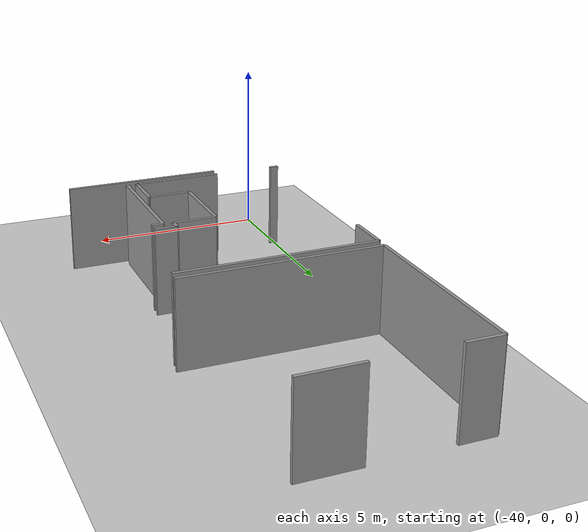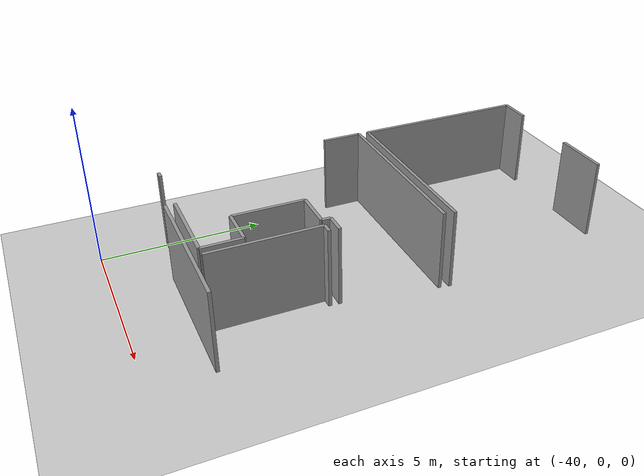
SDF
<sdf version="1.6">
 <world name="default">
  <model name="ground_plane">
   <static>1</static>
   <link name="link">
    <collision name="collision">
     <geometry><plane><normal>0 0 1</normal><size>100 100</size></plane></geometry>
     <surface><friction><ode><mu>100</mu><mu2>50</mu2></ode></friction></surface>
    </collision>
    <visual name="visual">
     <cast_shadows>0</cast_shadows>
     <geometry><plane><normal>0 0 1</normal><size>100 100</size></plane></geometry>
     <material>
      <script><uri>file://media/materials/scripts/gazebo.material</uri><name>Gazebo/Grey</name></script>
     </material>
    </visual>
   </link>
  </model>
  <model name="0510032268_A_40_1_102">
   <static>1</static>
   <link name="Wall_13">
    <collision name="Wall_13_Collision">
     <geometry><box><size>5.64752334461 0.1 2.5</size></box></geometry>
     <pose>2.82376167231 0 1.25 0 0 0</pose>
    </collision>
    <visual name="Wall_13_Visual">
     <pose>2.82376167231 0 1.25 0 0 0</pose>
     <geometry><box><size>5.64752334461 0.1 2.5</size></box></geometry>
     <material>
      <script><uri>file://media/materials/scripts/gazebo.material</uri><name>Gazebo/Grey</name></script>
      <ambient>1 1 1 1</ambient>
     </material>
    </visual>
    <pose>13.4452266538 -5.71620823838 0 0 0 3.14159265359</pose>
   </link>
   <link name="Wall_14">
    <collision name="Wall_14_Collision">
     <geometry><box><size>5.42445613879 0.1 2.5</size></box></geometry>
     <pose>2.7122280694 0 1.25 0 0 0</pose>
    </collision>
    <visual name="Wall_14_Visual">
     <pose>2.7122280694 0 1.25 0 0 0</pose>
     <geometry><box><size>5.42445613879 0.1 2.5</size></box></geometry>
     <material>
      <script><uri>file://media/materials/scripts/gazebo.material</uri><name>Gazebo/Grey</name></script>
      <ambient>1 1 1 1</ambient>
     </material>
    </visual>
    <pose>7.79770330919 -5.71620823838 0 0 0 1.57079632679</pose>
   </link>
   <link name="Wall_15">
    <collision name="Wall_15_Collision">
     <geometry><box><size>1.01592702389 0.1 2.5</size></box></geometry>
     <pose>0.507963511944 0 1.25 0 0 0</pose>
    </collision>
    <visual name="Wall_15_Visual">
     <pose>0.507963511944 0 1.25 0 0 0</pose>
     <geometry><box><size>1.01592702389 0.1 2.5</size></box></geometry>
     <material>
      <script><uri>file://media/materials/scripts/gazebo.material</uri><name>Gazebo/Grey</name></script>
      <ambient>1 1 1 1</ambient>
     </material>
    </visual>
    <pose>7.79770330919 -0.291752099587 0 0 0 0.0</pose>
   </link>
   <link name="Wall_16">
    <collision name="Wall_16_Collision">
     <geometry><box><size>1.69858631 0.1 2.5</size></box></geometry>
     <pose>0.849293154998 0 1.25 0 0 0</pose>
    </collision>
    <visual name="Wall_16_Visual">
     <pose>0.849293154998 0 1.25 0 0 0</pose>
     <geometry><box><size>1.69858631 0.1 2.5</size></box></geometry>
     <material>
      <script><uri>file://media/materials/scripts/gazebo.material</uri><name>Gazebo/Grey</name></script>
      <ambient>1 1 1 1</ambient>
     </material>
    </visual>
    <pose>11.0856910703 -0.291752099587 0 0 0 0.0</pose>
   </link>
   <link name="Wall_26">
    <collision name="Wall_26_Collision">
     <geometry><box><size>2.50591946982 0.1 2.5</size></box></geometry>
     <pose>1.25295973491 0 1.25 0 0 0</pose>
    </collision>
    <visual name="Wall_26_Visual">
     <pose>1.25295973491 0 1.25 0 0 0</pose>
     <geometry><box><size>2.50591946982 0.1 2.5</size></box></geometry>
     <material>
      <script><uri>file://media/materials/scripts/gazebo.material</uri><name>Gazebo/Grey</name></script>
      <ambient>1 1 1 1</ambient>
     </material>
    </visual>
    <pose>12.2808843974 -12.6414483498 0 0 0 3.14159265359</pose>
   </link>
   <link name="Wall_27">
    <collision name="Wall_27_Collision">
     <geometry><box><size>0.246935523802 0.1 2.5</size></box></geometry>
     <pose>0.123467761901 0 1.25 0 0 0</pose>
    </collision>
    <visual name="Wall_27_Visual">
     <pose>0.123467761901 0 1.25 0 0 0</pose>
     <geometry><box><size>0.246935523802 0.1 2.5</size></box></geometry>
     <material>
      <script><uri>file://media/materials/scripts/gazebo.material</uri><name>Gazebo/Grey</name></script>
      <ambient>1 1 1 1</ambient>
     </material>
    </visual>
    <pose>8.03194291917 -12.6414483498 0 0 0 3.14159265359</pose>
   </link>
   <link name="Wall_29">
    <collision name="Wall_29_Collision">
     <geometry><box><size>1.22680615244 0.1 2.5</size></box></geometry>
     <pose>0.61340307622 0 1.25 0 0 0</pose>
    </collision>
    <visual name="Wall_29_Visual">
     <pose>0.61340307622 0 1.25 0 0 0</pose>
     <geometry><box><size>1.22680615244 0.1 2.5</size></box></geometry>
     <material>
      <script><uri>file://media/materials/scripts/gazebo.material</uri><name>Gazebo/Grey</name></script>
      <ambient>1 1 1 1</ambient>
     </material>
    </visual>
    <pose>7.78500739537 -7.26041223632 0 0 0 1.57079632679</pose>
   </link>
   <link name="Wall_30">
    <collision name="Wall_30_Collision">
     <geometry><box><size>5.6089277666 0.1 2.5</size></box></geometry>
     <pose>2.8044638833 0 1.25 0 0 0</pose>
    </collision>
    <visual name="Wall_30_Visual">
     <pose>2.8044638833 0 1.25 0 0 0</pose>
     <geometry><box><size>5.6089277666 0.1 2.5</size></box></geometry>
     <material>
      <script><uri>file://media/materials/scripts/gazebo.material</uri><name>Gazebo/Grey</name></script>
      <ambient>1 1 1 1</ambient>
     </material>
    </visual>
    <pose>7.78500739537 -6.03360608388 0 0 0 0.0</pose>
   </link>
   <link name="Wall_35">
    <collision name="Wall_35_Collision">
     <geometry><box><size>0.624258082536 0.1 2.5</size></box></geometry>
     <pose>0.312129041268 0 1.25 0 0 0</pose>
    </collision>
    <visual name="Wall_35_Visual">
     <pose>0.312129041268 0 1.25 0 0 0</pose>
     <geometry><box><size>0.624258082536 0.1 2.5</size></box></geometry>
     <material>
      <script><uri>file://media/materials/scripts/gazebo.material</uri><name>Gazebo/Grey</name></script>
      <ambient>1 1 1 1</ambient>
     </material>
    </visual>
    <pose>12.9076816627 -8.96255340219 0 0 0 3.14159265359</pose>
   </link>
   <link name="Wall_36">
    <collision name="Wall_36_Collision">
     <geometry><box><size>0.272200392304 0.1 2.5</size></box></geometry>
     <pose>0.136100196152 0 1.25 0 0 0</pose>
    </collision>
    <visual name="Wall_36_Visual">
     <pose>0.136100196152 0 1.25 0 0 0</pose>
     <geometry><box><size>0.272200392304 0.1 2.5</size></box></geometry>
     <material>
      <script><uri>file://media/materials/scripts/gazebo.material</uri><name>Gazebo/Grey</name></script>
      <ambient>1 1 1 1</ambient>
     </material>
    </visual>
    <pose>12.2834235801 -8.96255340219 0 0 0 -1.57079632679</pose>
   </link>
   <link name="Wall_37">
    <collision name="Wall_37_Collision">
     <geometry><box><size>1.20509613981 0.1 2.5</size></box></geometry>
     <pose>0.602548069904 0 1.25 0 0 0</pose>
    </collision>
    <visual name="Wall_37_Visual">
     <pose>0.602548069904 0 1.25 0 0 0</pose>
     <geometry><box><size>1.20509613981 0.1 2.5</size></box></geometry>
     <material>
      <script><uri>file://media/materials/scripts/gazebo.material</uri><name>Gazebo/Grey</name></script>
      <ambient>1 1 1 1</ambient>
     </material>
    </visual>
    <pose>12.2834235801 -9.23475379449 0 0 0 3.14159265359</pose>
   </link>
   <link name="Wall_38">
    <collision name="Wall_38_Collision">
     <geometry><box><size>2.18877554259 0.1 2.5</size></box></geometry>
     <pose>1.0943877713 0 1.25 0 0 0</pose>
    </collision>
    <visual name="Wall_38_Visual">
     <pose>1.0943877713 0 1.25 0 0 0</pose>
     <geometry><box><size>2.18877554259 0.1 2.5</size></box></geometry>
     <material>
      <script><uri>file://media/materials/scripts/gazebo.material</uri><name>Gazebo/Grey</name></script>
      <ambient>1 1 1 1</ambient>
     </material>
    </visual>
    <pose>11.0783274403 -9.23475379449 0 0 0 -1.57079632679</pose>
   </link>
   <link name="Wall_39">
    <collision name="Wall_39_Collision">
     <geometry><box><size>1.19646291841 0.1 2.5</size></box></geometry>
     <pose>0.598231459205 0 1.25 0 0 0</pose>
    </collision>
    <visual name="Wall_39_Visual">
     <pose>0.598231459205 0 1.25 0 0 0</pose>
     <geometry><box><size>1.19646291841 0.1 2.5</size></box></geometry>
     <material>
      <script><uri>file://media/materials/scripts/gazebo.material</uri><name>Gazebo/Grey</name></script>
      <ambient>1 1 1 1</ambient>
     </material>
    </visual>
    <pose>11.0783274403 -11.4235293371 0 0 0 0.0</pose>
   </link>
   <link name="Wall_40">
    <collision name="Wall_40_Collision">
     <geometry><box><size>1.21793425888 0.1 2.5</size></box></geometry>
     <pose>0.608967129442 0 1.25 0 0 0</pose>
    </collision>
    <visual name="Wall_40_Visual">
     <pose>0.608967129442 0 1.25 0 0 0</pose>
     <geometry><box><size>1.21793425888 0.1 2.5</size></box></geometry>
     <material>
      <script><uri>file://media/materials/scripts/gazebo.material</uri><name>Gazebo/Grey</name></script>
      <ambient>1 1 1 1</ambient>
     </material>
    </visual>
    <pose>12.2747903587 -11.4235293371 0 0 0 -1.56579272006</pose>
   </link>
   <link name="Wall_42">
    <collision name="Wall_42_Collision">
     <geometry><box><size>3.38206448255 0.1 2.5</size></box></geometry>
     <pose>1.69103224127 0 1.25 0 0 0</pose>
    </collision>
    <visual name="Wall_42_Visual">
     <pose>1.69103224127 0 1.25 0 0 0</pose>
     <geometry><box><size>3.38206448255 0.1 2.5</size></box></geometry>
     <material>
      <script><uri>file://media/materials/scripts/gazebo.material</uri><name>Gazebo/Grey</name></script>
      <ambient>1 1 1 1</ambient>
     </material>
    </visual>
    <pose>12.5725095378 -12.6432257778 0 0 0 1.57079632679</pose>
   </link>
   <link name="Wall_43">
    <collision name="Wall_43_Collision">
     <geometry><box><size>0.313589071357 0.1 2.5</size></box></geometry>
     <pose>0.156794535679 0 1.25 0 0 0</pose>
    </collision>
    <visual name="Wall_43_Visual">
     <pose>0.156794535679 0 1.25 0 0 0</pose>
     <geometry><box><size>0.313589071357 0.1 2.5</size></box></geometry>
     <material>
      <script><uri>file://media/materials/scripts/gazebo.material</uri><name>Gazebo/Grey</name></script>
      <ambient>1 1 1 1</ambient>
     </material>
    </visual>
    <pose>12.5725095378 -9.26116129524 0 0 0 0.0</pose>
   </link>
   <link name="Wall_57">
    <collision name="Wall_57_Collision">
     <geometry><box><size>4.46426417657 0.1 2.5</size></box></geometry>
     <pose>2.23213208829 0 1.25 0 0 0</pose>
    </collision>
    <visual name="Wall_57_Visual">
     <pose>2.23213208829 0 1.25 0 0 0</pose>
     <geometry><box><size>4.46426417657 0.1 2.5</size></box></geometry>
     <material>
      <script><uri>file://media/materials/scripts/gazebo.material</uri><name>Gazebo/Grey</name></script>
      <ambient>1 1 1 1</ambient>
     </material>
    </visual>
    <pose>9.77179094908 -12.9222819636 0 0 0 0.0</pose>
   </link>
   <pose>-47.9 14.7321752544 0 0 0 0</pose>
  </model>
 </world>
</sdf>
